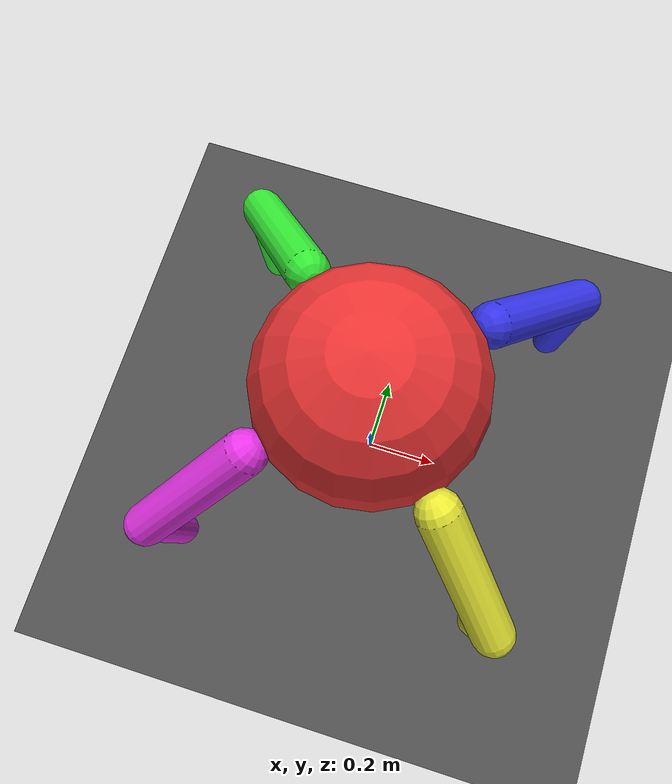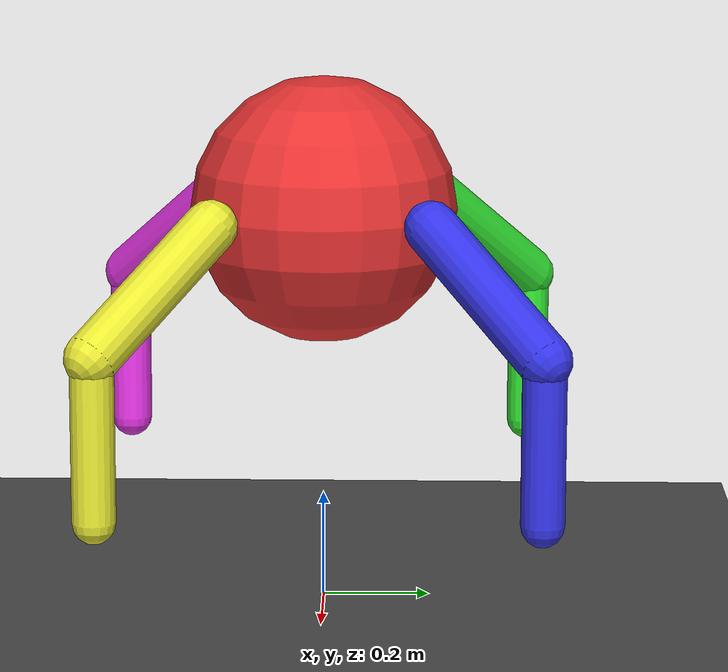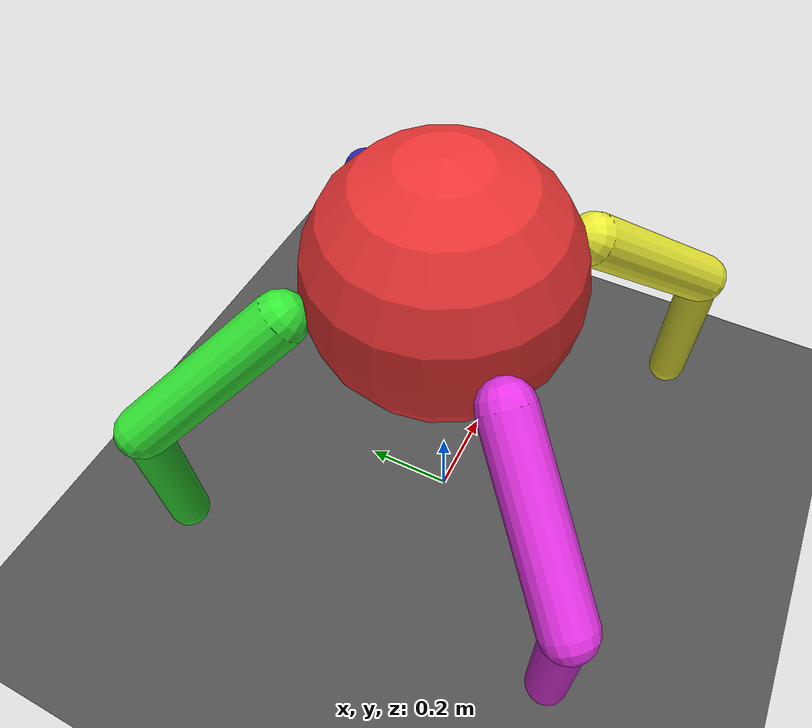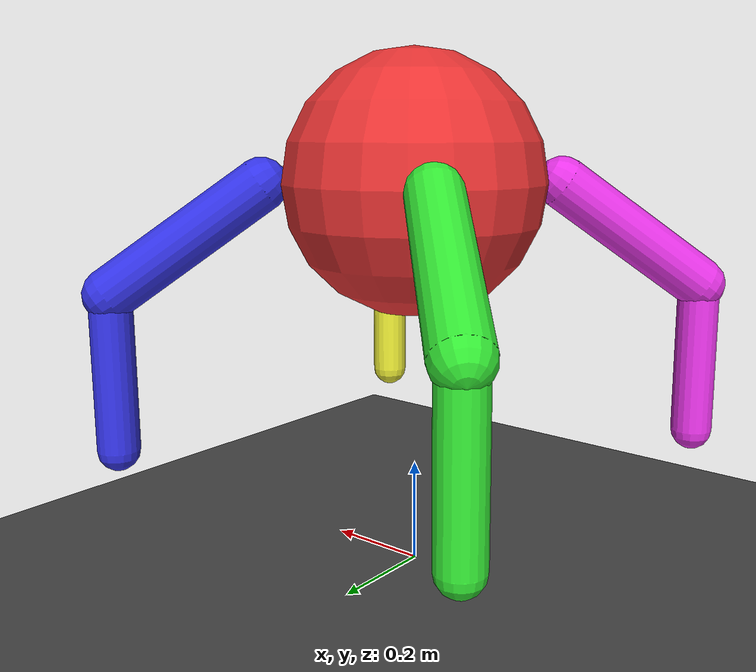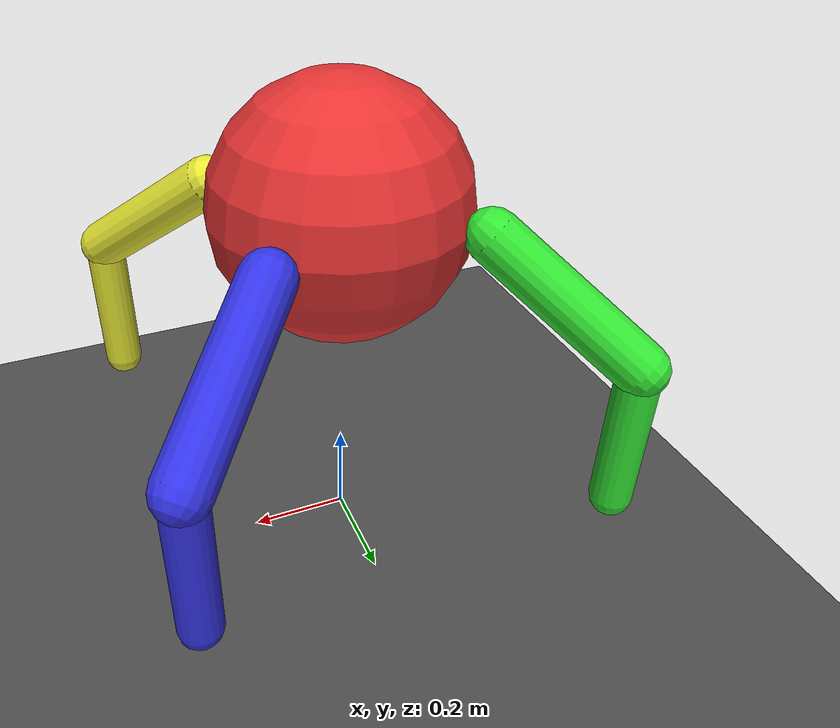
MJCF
<mujoco model="ant">
  <option gravity="0 0 -9.81" timestep="0.01"/>
  <default><geom friction="0.8 0.005 0.0001"/></default>
  <worldbody>
    <light pos="0 0 5"/><geom name="floor" type="plane" size="5 5 0.1" rgba="0.3 0.3 0.3 1"/>
    <body name="torso" pos="0 0 0.75">
      <freejoint/>
      <geom type="sphere" size="0.25" rgba="0.9 0.2 0.2 1"/>
      <body name="leg1_1" pos="0.2 0.2 0">
        <joint name="hip_1" type="hinge" axis="0 0 1" range="-40 40"/>
        <geom type="capsule" size="0.05" fromto="0 0 0 0.2 0.2 -0.2" rgba="0.2 0.2 0.9 1"/>
        <body name="leg1_2" pos="0.2 0.2 -0.2">
          <joint name="ankle_1" type="hinge" axis="0 1 0" range="-30 70"/>
          <geom type="capsule" size="0.04" fromto="0 0 0 0 0 -0.3" rgba="0.2 0.2 0.9 1"/>
        </body>
      </body>
      <body name="leg2_1" pos="-0.2 0.2 0">
        <joint name="hip_2" type="hinge" axis="0 0 1" range="-40 40"/>
        <geom type="capsule" size="0.05" fromto="0 0 0 -0.2 0.2 -0.2" rgba="0.2 0.9 0.2 1"/>
        <body name="leg2_2" pos="-0.2 0.2 -0.2">
          <joint name="ankle_2" type="hinge" axis="0 1 0" range="-30 70"/>
          <geom type="capsule" size="0.04" fromto="0 0 0 0 0 -0.3" rgba="0.2 0.9 0.2 1"/>
        </body>
      </body>
      <body name="leg3_1" pos="0.2 -0.2 0">
        <joint name="hip_3" type="hinge" axis="0 0 1" range="-40 40"/>
        <geom type="capsule" size="0.05" fromto="0 0 0 0.2 -0.2 -0.2" rgba="0.9 0.9 0.2 1"/>
        <body name="leg3_2" pos="0.2 -0.2 -0.2">
          <joint name="ankle_3" type="hinge" axis="0 1 0" range="-30 70"/>
          <geom type="capsule" size="0.04" fromto="0 0 0 0 0 -0.3" rgba="0.9 0.9 0.2 1"/>
        </body>
      </body>
      <body name="leg4_1" pos="-0.2 -0.2 0">
        <joint name="hip_4" type="hinge" axis="0 0 1" range="-40 40"/>
        <geom type="capsule" size="0.05" fromto="0 0 0 -0.2 -0.2 -0.2" rgba="0.9 0.2 0.9 1"/>
        <body name="leg4_2" pos="-0.2 -0.2 -0.2">
          <joint name="ankle_4" type="hinge" axis="0 1 0" range="-30 70"/>
          <geom type="capsule" size="0.04" fromto="0 0 0 0 0 -0.3" rgba="0.9 0.2 0.9 1"/>
        </body>
      </body>
    </body>
  </worldbody>
  <actuator>
    <motor name="hip_1" joint="hip_1" ctrlrange="-1 1"/>
    <motor name="ankle_1" joint="ankle_1" ctrlrange="-1 1"/>
    <motor name="hip_2" joint="hip_2" ctrlrange="-1 1"/>
    <motor name="ankle_2" joint="ankle_2" ctrlrange="-1 1"/>
    <motor name="hip_3" joint="hip_3" ctrlrange="-1 1"/>
    <motor name="ankle_3" joint="ankle_3" ctrlrange="-1 1"/>
    <motor name="hip_4" joint="hip_4" ctrlrange="-1 1"/>
    <motor name="ankle_4" joint="ankle_4" ctrlrange="-1 1"/>
  </actuator>
  <sensor>
    <jointpos name="hip_1_pos" joint="hip_1"/>
    <jointpos name="hip_2_pos" joint="hip_2"/>
    <jointpos name="hip_3_pos" joint="hip_3"/>
    <jointpos name="hip_4_pos" joint="hip_4"/>
    <actuatorfrc name="hip_1_frc" actuator="hip_1"/>
    <actuatorfrc name="hip_2_frc" actuator="hip_2"/>
    <actuatorfrc name="hip_3_frc" actuator="hip_3"/>
    <actuatorfrc name="hip_4_frc" actuator="hip_4"/>
    <framepos name="torso_pos" objtype="body" objname="torso"/>
    <framelinvel name="torso_vel" objtype="body" objname="torso"/>
  </sensor>
</mujoco>
